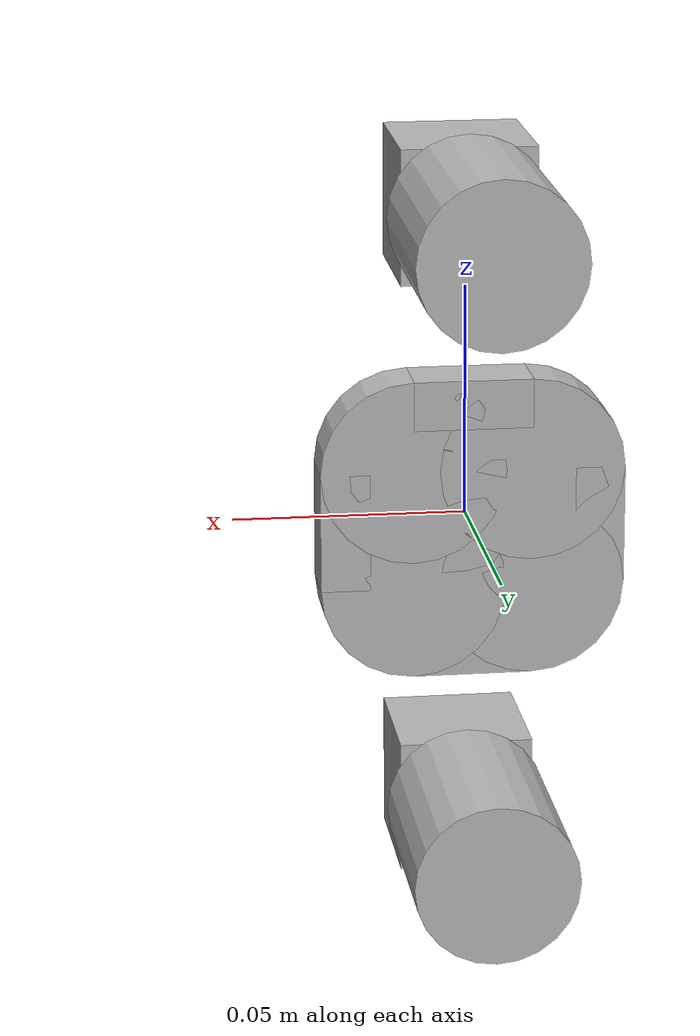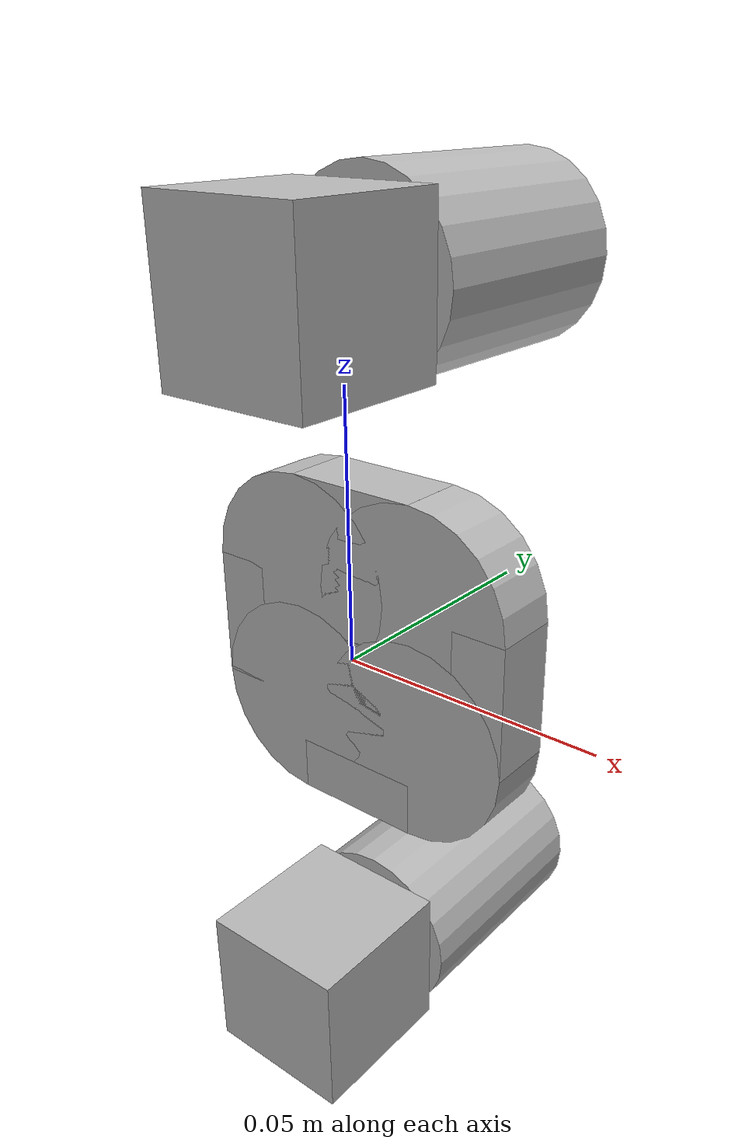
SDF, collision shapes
<?xml version="1.0" ?>
<!-- |    This document was autogenerated by xacro from flir_assembly_primitives.sdf.xacro | -->
<!-- |    EDITING THIS FILE BY HAND IS NOT RECOMMENDED                                 | -->
<sdf version="1.7" xmlns:drake="http://drake.mit.edu">
  <model name="schunk_adapter_camera_assembly">
    <link name="schunk_franka_adapter">
      <pose>0 0 0 0 0 0</pose>
      <inertial>
        <pose>0.000109 0.00633 0.000109 0 0 0</pose>
        <mass>0.122</mass>
        <inertia>
          <ixx> 0.0000456</ixx>
          <ixy> 0.0000000</ixy>
          <ixz> 0.0000002</ixz>
          <iyy> 0.0000862</iyy>
          <iyz> 0.0000000</iyz>
          <izz> 0.0000440</izz>
        </inertia>
      </inertial>
      <visual name="schunk_franka_adapter">
        <pose>0 0 0 0 0 0</pose>
        <geometry>
          <mesh>
            <uri>/data/kylehatch/lbm_eval/lbm_eval_models/robots/schunk_grippers/assets/schunk_franka_adapter.gltf</uri>
            <scale>1.0 1.0 1.0</scale>
          </mesh>
        </geometry>
      </visual>
      <collision name="schunk_franka_adapter_bottom_box_col">
        <pose>0.0 0.00635 -0.02725 0.0 -0.0 0.0</pose>
        <geometry>
          <box>
            <size>0.02539 0.0127 0.01055</size>
          </box>
        </geometry>
        <drake:proximity_properties>
          <drake:mu_dynamic>0.3</drake:mu_dynamic>
          <drake:mu_static>0.3</drake:mu_static>
          <drake:hydroelastic_modulus>1e8</drake:hydroelastic_modulus>
          <drake:hunt_crossley_dissipation>40</drake:hunt_crossley_dissipation>
          <drake:compliant_hydroelastic/>
        </drake:proximity_properties>
      </collision>
      <collision name="schunk_franka_adapter_bottom_left_cylinder_col">
        <pose>-0.01269 0.00635 -0.01272 1.5708 -0.0 0.0</pose>
        <geometry>
          <cylinder>
            <radius>0.0198</radius>
            <length>0.0127</length>
          </cylinder>
        </geometry>
        <drake:proximity_properties>
          <drake:mu_dynamic>0.3</drake:mu_dynamic>
          <drake:mu_static>0.3</drake:mu_static>
          <drake:hydroelastic_modulus>1e8</drake:hydroelastic_modulus>
          <drake:hunt_crossley_dissipation>40</drake:hunt_crossley_dissipation>
          <drake:compliant_hydroelastic/>
          <drake:mesh_resolution_hint>0.005</drake:mesh_resolution_hint>
        </drake:proximity_properties>
      </collision>
      <collision name="schunk_franka_adapter_bottom_right_cylinder_col">
        <pose>0.01269 0.00635 -0.01272 1.5708 -0.0 0.0</pose>
        <geometry>
          <cylinder>
            <radius>0.0198</radius>
            <length>0.0127</length>
          </cylinder>
        </geometry>
        <drake:proximity_properties>
          <drake:mu_dynamic>0.3</drake:mu_dynamic>
          <drake:mu_static>0.3</drake:mu_static>
          <drake:hydroelastic_modulus>1e8</drake:hydroelastic_modulus>
          <drake:hunt_crossley_dissipation>40</drake:hunt_crossley_dissipation>
          <drake:compliant_hydroelastic/>
          <drake:mesh_resolution_hint>0.005</drake:mesh_resolution_hint>
        </drake:proximity_properties>
      </collision>
      <collision name="schunk_franka_adapter_mid_left_box_col">
        <pose>-0.02723 0.00635 -0.0 0.0 -0.0 0.0</pose>
        <geometry>
          <box>
            <size>0.01055 0.0127 0.02543</size>
          </box>
        </geometry>
        <drake:proximity_properties>
          <drake:mu_dynamic>0.3</drake:mu_dynamic>
          <drake:mu_static>0.3</drake:mu_static>
          <drake:hydroelastic_modulus>1e8</drake:hydroelastic_modulus>
          <drake:hunt_crossley_dissipation>40</drake:hunt_crossley_dissipation>
          <drake:compliant_hydroelastic/>
        </drake:proximity_properties>
      </collision>
      <collision name="schunk_franka_adapter_mid_right_box_col">
        <pose>0.02723 0.00635 0.0 0.0 -0.0 0.0</pose>
        <geometry>
          <box>
            <size>0.01055 0.0127 0.02543</size>
          </box>
        </geometry>
        <drake:proximity_properties>
          <drake:mu_dynamic>0.3</drake:mu_dynamic>
          <drake:mu_static>0.3</drake:mu_static>
          <drake:hydroelastic_modulus>1e8</drake:hydroelastic_modulus>
          <drake:hunt_crossley_dissipation>40</drake:hunt_crossley_dissipation>
          <drake:compliant_hydroelastic/>
        </drake:proximity_properties>
      </collision>
      <collision name="schunk_franka_adapter_top_box_col">
        <pose>0.0 0.00635 0.02725 -0.0 1.5708 0.0</pose>
        <geometry>
          <box>
            <size>0.01055 0.0127 0.02539</size>
          </box>
        </geometry>
        <drake:proximity_properties>
          <drake:mu_dynamic>0.3</drake:mu_dynamic>
          <drake:mu_static>0.3</drake:mu_static>
          <drake:hydroelastic_modulus>1e8</drake:hydroelastic_modulus>
          <drake:hunt_crossley_dissipation>40</drake:hunt_crossley_dissipation>
          <drake:compliant_hydroelastic/>
        </drake:proximity_properties>
      </collision>
      <collision name="schunk_franka_adapter_top_left_cylinder_col">
        <pose>-0.01269 0.00635 0.01272 1.5708 -0.0 0.0</pose>
        <geometry>
          <cylinder>
            <radius>0.0198</radius>
            <length>0.0127</length>
          </cylinder>
        </geometry>
        <drake:proximity_properties>
          <drake:mu_dynamic>0.3</drake:mu_dynamic>
          <drake:mu_static>0.3</drake:mu_static>
          <drake:hydroelastic_modulus>1e8</drake:hydroelastic_modulus>
          <drake:hunt_crossley_dissipation>40</drake:hunt_crossley_dissipation>
          <drake:compliant_hydroelastic/>
          <drake:mesh_resolution_hint>0.005</drake:mesh_resolution_hint>
        </drake:proximity_properties>
      </collision>
      <collision name="schunk_franka_adapter_top_right_cylinder_col">
        <pose>0.01269 0.00635 0.01272 1.5708 -0.0 0.0</pose>
        <geometry>
          <cylinder>
            <radius>0.0198</radius>
            <length>0.0127</length>
          </cylinder>
        </geometry>
        <drake:proximity_properties>
          <drake:mu_dynamic>0.3</drake:mu_dynamic>
          <drake:mu_static>0.3</drake:mu_static>
          <drake:hydroelastic_modulus>1e8</drake:hydroelastic_modulus>
          <drake:hunt_crossley_dissipation>40</drake:hunt_crossley_dissipation>
          <drake:compliant_hydroelastic/>
          <drake:mesh_resolution_hint>0.005</drake:mesh_resolution_hint>
        </drake:proximity_properties>
      </collision>
    </link>
    <link name="flir_blackfly_camera_marshall_28_lens_franka_mount_L">
      <pose>0 -0.00265 -0.0336 0 3.14159 0</pose>
      <inertial>
        <pose>-2.3e-05 0.00924 0.0279 0 0 0</pose>
        <mass>0.154</mass>
        <inertia>
          <ixx> 0.0000956</ixx>
          <ixy> 0.0000000</ixy>
          <ixz> 0.0000000</ixz>
          <iyy> 0.0000339</iyy>
          <iyz>-0.0000087</iyz>
          <izz> 0.0000884</izz>
        </inertia>
      </inertial>
      <visual name="flir_blackfly_camera_marshall_28_lens_franka_mount">
        <pose>0 0 0 0 0 0</pose>
        <geometry>
          <mesh>
            <uri>/data/kylehatch/lbm_eval/lbm_eval_models/robots/schunk_grippers/assets/flir_blackfly_camera_marshall_28_lens_franka_mount.gltf</uri>
            <scale>1.0 1.0 1.0</scale>
          </mesh>
        </geometry>
        <!-- Because the RGBD sensor is inside the camera assembly, we omit
          the camera model from rendering to avoid obstructing the sensor's
          view. See issue #15807 -->
        <drake:accepting_renderer>no_accepting_renderer</drake:accepting_renderer>
      </visual>
      <collision name="flir_camera_body_box_col">
        <pose>-0.0 -0.00742 0.0322 0.0 0.0 0.0</pose>
        <geometry>
          <box>
            <size>0.029 0.03 0.029</size>
          </box>
        </geometry>
        <drake:proximity_properties>
          <drake:mu_dynamic>0.3</drake:mu_dynamic>
          <drake:mu_static>0.3</drake:mu_static>
          <drake:hydroelastic_modulus>1e8</drake:hydroelastic_modulus>
          <drake:hunt_crossley_dissipation>40</drake:hunt_crossley_dissipation>
          <drake:compliant_hydroelastic/>
        </drake:proximity_properties>
      </collision>
      <collision name="flir_camera_lens_cylinder_col">
        <pose>-0.0 0.03042 0.0322 1.5708 -0.0 0.0</pose>
        <geometry>
          <cylinder>
            <radius>0.0175</radius>
            <length>0.04569</length>
          </cylinder>
        </geometry>
        <drake:proximity_properties>
          <drake:mu_dynamic>0.3</drake:mu_dynamic>
          <drake:mu_static>0.3</drake:mu_static>
          <drake:hydroelastic_modulus>1e8</drake:hydroelastic_modulus>
          <drake:hunt_crossley_dissipation>40</drake:hunt_crossley_dissipation>
          <drake:compliant_hydroelastic/>
          <drake:mesh_resolution_hint>0.005</drake:mesh_resolution_hint>
        </drake:proximity_properties>
      </collision>
    </link>
    <link name="flir_blackfly_camera_marshall_28_lens_franka_mount_R">
      <pose>0 -0.00265 0.0336 0 0 0</pose>
      <inertial>
        <pose>-2.3e-05 0.00924 0.0279 0 0 0</pose>
        <mass>0.154</mass>
        <inertia>
          <ixx> 0.0000956</ixx>
          <ixy> 0.0000000</ixy>
          <ixz> 0.0000000</ixz>
          <iyy> 0.0000339</iyy>
          <iyz>-0.0000087</iyz>
          <izz> 0.0000884</izz>
        </inertia>
      </inertial>
      <visual name="flir_blackfly_camera_marshall_28_lens_franka_mount">
        <pose>0 0 0 0 0 0</pose>
        <geometry>
          <mesh>
            <uri>/data/kylehatch/lbm_eval/lbm_eval_models/robots/schunk_grippers/assets/flir_blackfly_camera_marshall_28_lens_franka_mount.gltf</uri>
            <scale>1.0 1.0 1.0</scale>
          </mesh>
        </geometry>
        <!-- Because the RGBD sensor is inside the camera assembly, we omit
          the camera model from rendering to avoid obstructing the sensor's
          view. See issue #15807 -->
        <drake:accepting_renderer>no_accepting_renderer</drake:accepting_renderer>
      </visual>
      <collision name="flir_camera_body_box_col">
        <pose>-0.0 -0.00742 0.0322 0.0 0.0 0.0</pose>
        <geometry>
          <box>
            <size>0.029 0.03 0.029</size>
          </box>
        </geometry>
        <drake:proximity_properties>
          <drake:mu_dynamic>0.3</drake:mu_dynamic>
          <drake:mu_static>0.3</drake:mu_static>
          <drake:hydroelastic_modulus>1e8</drake:hydroelastic_modulus>
          <drake:hunt_crossley_dissipation>40</drake:hunt_crossley_dissipation>
          <drake:compliant_hydroelastic/>
        </drake:proximity_properties>
      </collision>
      <collision name="flir_camera_lens_cylinder_col">
        <pose>-0.0 0.03042 0.0322 1.5708 -0.0 0.0</pose>
        <geometry>
          <cylinder>
            <radius>0.0175</radius>
            <length>0.04569</length>
          </cylinder>
        </geometry>
        <drake:proximity_properties>
          <drake:mu_dynamic>0.3</drake:mu_dynamic>
          <drake:mu_static>0.3</drake:mu_static>
          <drake:hydroelastic_modulus>1e8</drake:hydroelastic_modulus>
          <drake:hunt_crossley_dissipation>40</drake:hunt_crossley_dissipation>
          <drake:compliant_hydroelastic/>
          <drake:mesh_resolution_hint>0.005</drake:mesh_resolution_hint>
        </drake:proximity_properties>
      </collision>
    </link>
    <joint name="weld_joint_2" type="fixed">
      <parent>schunk_franka_adapter</parent>
      <child>flir_blackfly_camera_marshall_28_lens_franka_mount_R</child>
    </joint>
    <joint name="weld_joint_3" type="fixed">
      <parent>schunk_franka_adapter</parent>
      <child>flir_blackfly_camera_marshall_28_lens_franka_mount_L</child>
    </joint>
    <frame name="origin">
      <pose relative_to="schunk_franka_adapter">0 0 0 0 0 0</pose>
    </frame>
    <frame name="adapter_top_center">
      <pose relative_to="schunk_franka_adapter">0 0.0127 0 0 0 0</pose>
    </frame>
  </model>
</sdf>
